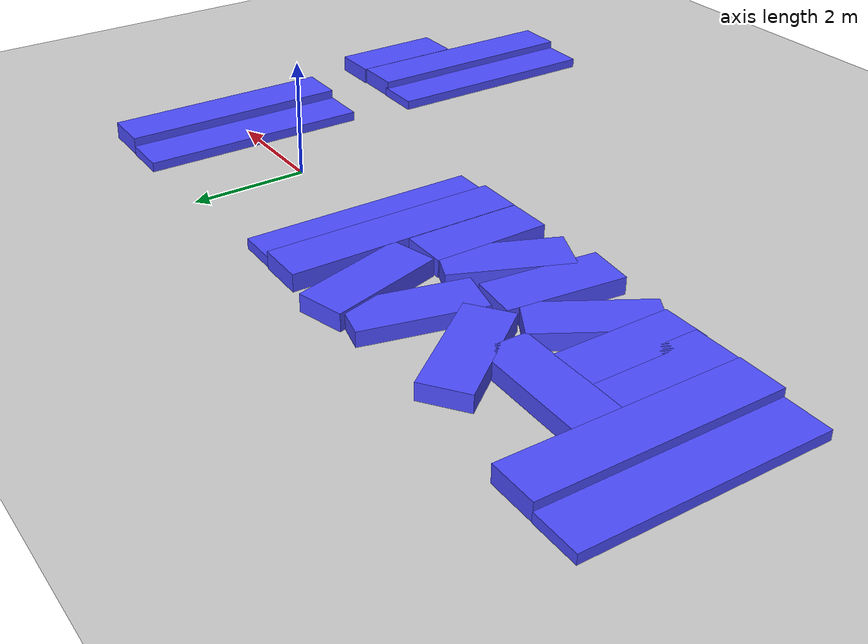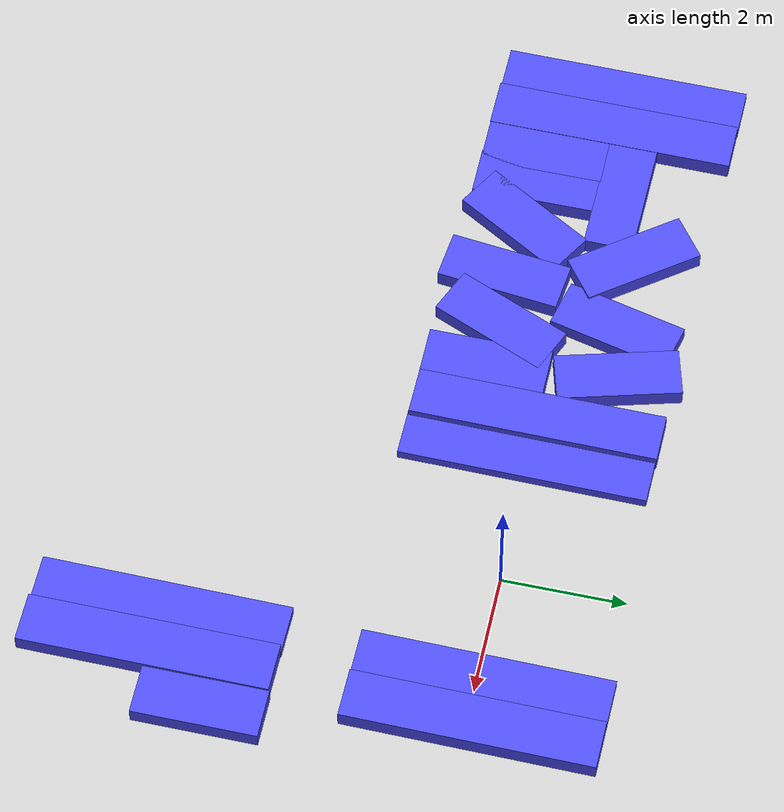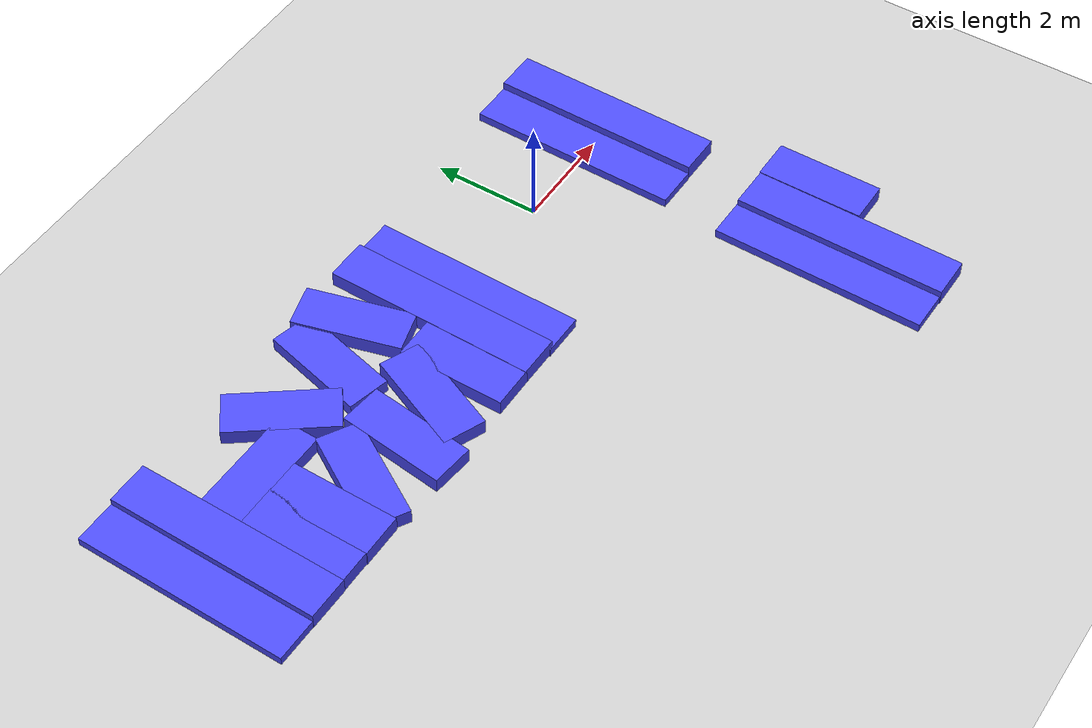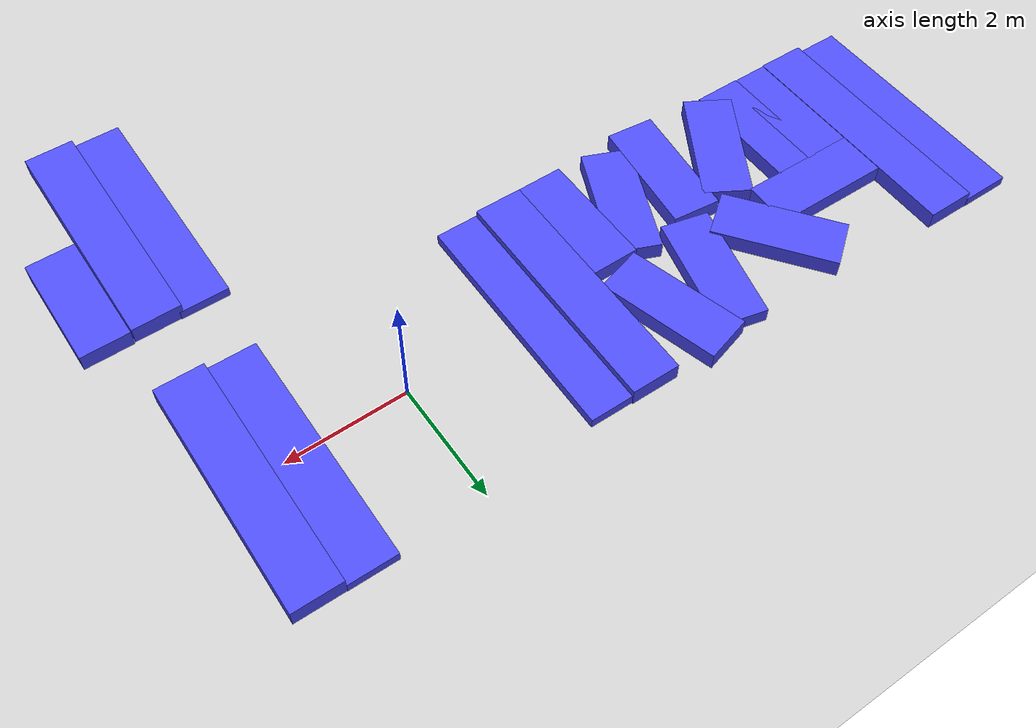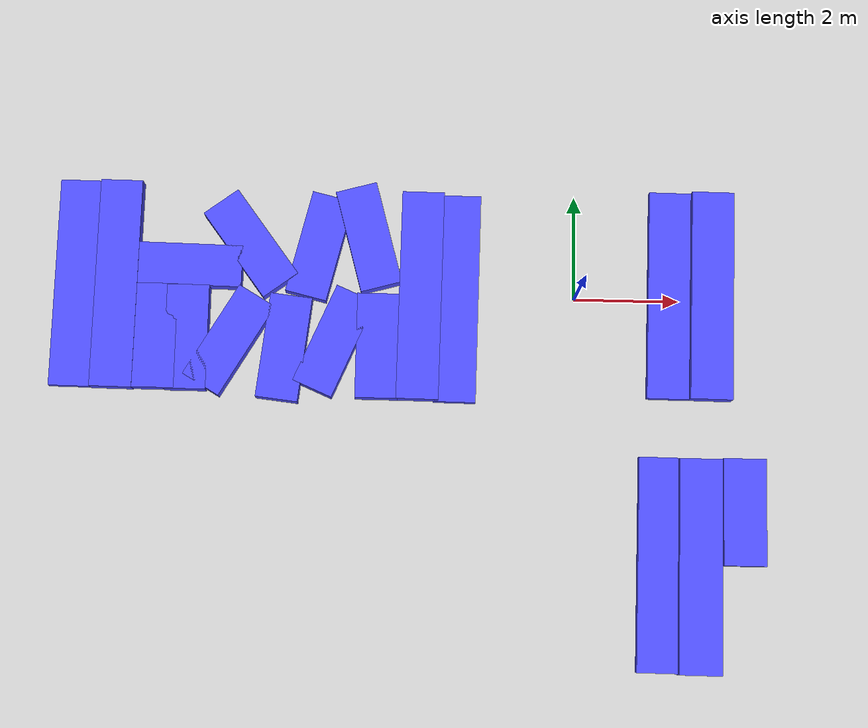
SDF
<sdf version="1.7">
 <world name="default">
  <model name="ground_plane">
   <static>1</static>
   <link name="link">
    <collision name="collision">
     <geometry><plane><normal>0 0 1</normal><size>100 100</size></plane></geometry>
     <surface><friction><ode><mu>100</mu><mu2>50</mu2></ode></friction></surface>
    </collision>
    <visual name="visual">
     <cast_shadows>0</cast_shadows>
     <geometry><plane><normal>0 0 1</normal><size>100 100</size></plane></geometry>
     <material>
      <script><uri>file://media/materials/scripts/gazebo.material</uri><name>Gazebo/Grey</name></script>
     </material>
    </visual>
   </link>
  </model>
  <model name="ban_400_80_30">
   <link name="link">
    <inertial>
     <mass>1</mass>
     <inertia>
      <ixx>0.166667</ixx>
      <ixy>0</ixy>
      <ixz>0</ixz>
      <iyy>0.166667</iyy>
      <iyz>0</iyz>
      <izz>0.166667</izz>
     </inertia>
    </inertial>
    <visual name="visual">
     <geometry><box><size>4 0.8 0.3</size></box></geometry>
     <material>
      <script><name>Gazebo/Grey</name><uri>file://media/materials/scripts/gazebo.material</uri></script>
      <shader type="pixel"><normal_map>__default__</normal_map></shader>
      <ambient>0.3 0.3 1 1</ambient>
      <diffuse>0.7 0.7 0.7 1</diffuse>
      <specular>0.01 0.01 0.01 1</specular>
      <emissive>0 0 0 1</emissive>
     </material>
    </visual>
    <collision name="collision">
     <geometry><box><size>4 0.8 0.3</size></box></geometry>
     <surface>
      <friction>
       <ode><mu>1</mu><mu2>1</mu2><fdir1>0 0 0</fdir1><slip1>0</slip1><slip2>0</slip2></ode>
       <torsional>
        <coefficient>1</coefficient>
        <patch_radius>0</patch_radius>
        <surface_radius>0</surface_radius>
        <use_patch_radius>1</use_patch_radius>
        <ode><slip>0</slip></ode>
       </torsional>
      </friction>
      <bounce><restitution_coefficient>0</restitution_coefficient><threshold>1e+06</threshold></bounce>
      <contact>
       <collide_without_contact>0</collide_without_contact>
       <collide_without_contact_bitmask>1</collide_without_contact_bitmask>
       <collide_bitmask>1</collide_bitmask>
       <ode>
        <soft_cfm>0</soft_cfm>
        <soft_erp>0.2</soft_erp>
        <kp>1e+13</kp>
        <kd>1</kd>
        <max_vel>0.01</max_vel>
        <min_depth>0</min_depth>
       </ode>
       <bullet>
        <split_impulse>1</split_impulse>
        <split_impulse_penetration_threshold>-0.01</split_impulse_penetration_threshold>
        <soft_cfm>0</soft_cfm>
        <soft_erp>0.2</soft_erp>
        <kp>1e+13</kp>
        <kd>1</kd>
       </bullet>
      </contact>
     </surface>
    </collision>
   </link>
   <static>1</static>
   <pose>1.81049 0.102489 0 0 -0 1.55763</pose>
  </model>
  <model name="ban_400_80_30_clone">
   <link name="link">
    <inertial>
     <mass>1</mass>
     <inertia>
      <ixx>0.166667</ixx>
      <ixy>0</ixy>
      <ixz>0</ixz>
      <iyy>0.166667</iyy>
      <iyz>0</iyz>
      <izz>0.166667</izz>
     </inertia>
    </inertial>
    <visual name="visual">
     <geometry><box><size>4 0.8 0.3</size></box></geometry>
     <material>
      <script><name>Gazebo/Grey</name><uri>file://media/materials/scripts/gazebo.material</uri></script>
      <shader type="pixel"><normal_map>__default__</normal_map></shader>
      <ambient>0.3 0.3 1 1</ambient>
      <diffuse>0.7 0.7 0.7 1</diffuse>
      <specular>0.01 0.01 0.01 1</specular>
      <emissive>0 0 0 1</emissive>
     </material>
    </visual>
    <collision name="collision">
     <geometry><box><size>4 0.8 0.3</size></box></geometry>
     <surface>
      <friction>
       <ode><mu>1</mu><mu2>1</mu2><fdir1>0 0 0</fdir1><slip1>0</slip1><slip2>0</slip2></ode>
       <torsional>
        <coefficient>1</coefficient>
        <patch_radius>0</patch_radius>
        <surface_radius>0</surface_radius>
        <use_patch_radius>1</use_patch_radius>
        <ode><slip>0</slip></ode>
       </torsional>
      </friction>
      <bounce><restitution_coefficient>0</restitution_coefficient><threshold>1e+06</threshold></bounce>
      <contact>
       <collide_without_contact>0</collide_without_contact>
       <collide_without_contact_bitmask>1</collide_without_contact_bitmask>
       <collide_bitmask>1</collide_bitmask>
       <ode>
        <soft_cfm>0</soft_cfm>
        <soft_erp>0.2</soft_erp>
        <kp>1e+13</kp>
        <kd>1</kd>
        <max_vel>0.01</max_vel>
        <min_depth>0</min_depth>
       </ode>
       <bullet>
        <split_impulse>1</split_impulse>
        <split_impulse_penetration_threshold>-0.01</split_impulse_penetration_threshold>
        <soft_cfm>0</soft_cfm>
        <soft_erp>0.2</soft_erp>
        <kp>1e+13</kp>
        <kd>1</kd>
       </bullet>
      </contact>
     </surface>
    </collision>
   </link>
   <static>1</static>
   <pose>2.60692 0.093561 0.150704 0 -0 1.55763</pose>
  </model>
  <model name="ban_400_80_30_clone_1">
   <link name="link">
    <inertial>
     <mass>1</mass>
     <inertia>
      <ixx>0.166667</ixx>
      <ixy>0</ixy>
      <ixz>0</ixz>
      <iyy>0.166667</iyy>
      <iyz>0</iyz>
      <izz>0.166667</izz>
     </inertia>
    </inertial>
    <visual name="visual">
     <geometry><box><size>4 0.8 0.3</size></box></geometry>
     <material>
      <script><name>Gazebo/Grey</name><uri>file://media/materials/scripts/gazebo.material</uri></script>
      <shader type="pixel"><normal_map>__default__</normal_map></shader>
      <ambient>0.3 0.3 1 1</ambient>
      <diffuse>0.7 0.7 0.7 1</diffuse>
      <specular>0.01 0.01 0.01 1</specular>
      <emissive>0 0 0 1</emissive>
     </material>
    </visual>
    <collision name="collision">
     <geometry><box><size>4 0.8 0.3</size></box></geometry>
     <surface>
      <friction>
       <ode><mu>1</mu><mu2>1</mu2><fdir1>0 0 0</fdir1><slip1>0</slip1><slip2>0</slip2></ode>
       <torsional>
        <coefficient>1</coefficient>
        <patch_radius>0</patch_radius>
        <surface_radius>0</surface_radius>
        <use_patch_radius>1</use_patch_radius>
        <ode><slip>0</slip></ode>
       </torsional>
      </friction>
      <bounce><restitution_coefficient>0</restitution_coefficient><threshold>1e+06</threshold></bounce>
      <contact>
       <collide_without_contact>0</collide_without_contact>
       <collide_without_contact_bitmask>1</collide_without_contact_bitmask>
       <collide_bitmask>1</collide_bitmask>
       <ode>
        <soft_cfm>0</soft_cfm>
        <soft_erp>0.2</soft_erp>
        <kp>1e+13</kp>
        <kd>1</kd>
        <max_vel>0.01</max_vel>
        <min_depth>0</min_depth>
       </ode>
       <bullet>
        <split_impulse>1</split_impulse>
        <split_impulse_penetration_threshold>-0.01</split_impulse_penetration_threshold>
        <soft_cfm>0</soft_cfm>
        <soft_erp>0.2</soft_erp>
        <kp>1e+13</kp>
        <kd>1</kd>
       </bullet>
      </contact>
     </surface>
    </collision>
   </link>
   <static>1</static>
   <pose>1.61045 -5.009 0 0 -0 1.55763</pose>
  </model>
  <model name="ban_400_80_30_clone_2">
   <link name="link">
    <inertial>
     <mass>1</mass>
     <inertia>
      <ixx>0.166667</ixx>
      <ixy>0</ixy>
      <ixz>0</ixz>
      <iyy>0.166667</iyy>
      <iyz>0</iyz>
      <izz>0.166667</izz>
     </inertia>
    </inertial>
    <visual name="visual">
     <geometry><box><size>4 0.8 0.3</size></box></geometry>
     <material>
      <script><name>Gazebo/Grey</name><uri>file://media/materials/scripts/gazebo.material</uri></script>
      <shader type="pixel"><normal_map>__default__</normal_map></shader>
      <ambient>0.3 0.3 1 1</ambient>
      <diffuse>0.7 0.7 0.7 1</diffuse>
      <specular>0.01 0.01 0.01 1</specular>
      <emissive>0 0 0 1</emissive>
     </material>
    </visual>
    <collision name="collision">
     <geometry><box><size>4 0.8 0.3</size></box></geometry>
     <surface>
      <friction>
       <ode><mu>1</mu><mu2>1</mu2><fdir1>0 0 0</fdir1><slip1>0</slip1><slip2>0</slip2></ode>
       <torsional>
        <coefficient>1</coefficient>
        <patch_radius>0</patch_radius>
        <surface_radius>0</surface_radius>
        <use_patch_radius>1</use_patch_radius>
        <ode><slip>0</slip></ode>
       </torsional>
      </friction>
      <bounce><restitution_coefficient>0</restitution_coefficient><threshold>1e+06</threshold></bounce>
      <contact>
       <collide_without_contact>0</collide_without_contact>
       <collide_without_contact_bitmask>1</collide_without_contact_bitmask>
       <collide_bitmask>1</collide_bitmask>
       <ode>
        <soft_cfm>0</soft_cfm>
        <soft_erp>0.2</soft_erp>
        <kp>1e+13</kp>
        <kd>1</kd>
        <max_vel>0.01</max_vel>
        <min_depth>0</min_depth>
       </ode>
       <bullet>
        <split_impulse>1</split_impulse>
        <split_impulse_penetration_threshold>-0.01</split_impulse_penetration_threshold>
        <soft_cfm>0</soft_cfm>
        <soft_erp>0.2</soft_erp>
        <kp>1e+13</kp>
        <kd>1</kd>
       </bullet>
      </contact>
     </surface>
    </collision>
   </link>
   <static>1</static>
   <pose>2.36163 -5.0304 0.12761 0 -0 1.56189</pose>
  </model>
  <model name="ban_200_80_30">
   <link name="link">
    <inertial>
     <mass>1</mass>
     <inertia>
      <ixx>0.166667</ixx>
      <ixy>0</ixy>
      <ixz>0</ixz>
      <iyy>0.166667</iyy>
      <iyz>0</iyz>
      <izz>0.166667</izz>
     </inertia>
    </inertial>
    <visual name="visual">
     <geometry><box><size>2 0.8 0.3</size></box></geometry>
     <material>
      <script><name>Gazebo/Grey</name><uri>file://media/materials/scripts/gazebo.material</uri></script>
      <shader type="pixel"><normal_map>__default__</normal_map></shader>
      <ambient>0.3 0.3 1 1</ambient>
      <diffuse>0.7 0.7 0.7 1</diffuse>
      <specular>0.01 0.01 0.01 1</specular>
      <emissive>0 0 0 1</emissive>
     </material>
    </visual>
    <collision name="collision">
     <geometry><box><size>2 0.8 0.3</size></box></geometry>
     <surface>
      <friction>
       <ode><mu>1</mu><mu2>1</mu2><fdir1>0 0 0</fdir1><slip1>0</slip1><slip2>0</slip2></ode>
       <torsional>
        <coefficient>1</coefficient>
        <patch_radius>0</patch_radius>
        <surface_radius>0</surface_radius>
        <use_patch_radius>1</use_patch_radius>
        <ode><slip>0</slip></ode>
       </torsional>
      </friction>
      <bounce><restitution_coefficient>0</restitution_coefficient><threshold>1e+06</threshold></bounce>
      <contact>
       <collide_without_contact>0</collide_without_contact>
       <collide_without_contact_bitmask>1</collide_without_contact_bitmask>
       <collide_bitmask>1</collide_bitmask>
       <ode>
        <soft_cfm>0</soft_cfm>
        <soft_erp>0.2</soft_erp>
        <kp>1e+13</kp>
        <kd>1</kd>
        <max_vel>0.01</max_vel>
        <min_depth>0</min_depth>
       </ode>
       <bullet>
        <split_impulse>1</split_impulse>
        <split_impulse_penetration_threshold>-0.01</split_impulse_penetration_threshold>
        <soft_cfm>0</soft_cfm>
        <soft_erp>0.2</soft_erp>
        <kp>1e+13</kp>
        <kd>1</kd>
       </bullet>
      </contact>
     </surface>
    </collision>
   </link>
   <static>1</static>
   <pose>3.19073 -4.01387 0.12138 0 0 -1.57453</pose>
  </model>
  <model name="ban_400_80_30_clone_1_clone_0">
   <link name="link">
    <inertial>
     <mass>1</mass>
     <inertia>
      <ixx>0.166667</ixx>
      <ixy>0</ixy>
      <ixz>0</ixz>
      <iyy>0.166667</iyy>
      <iyz>0</iyz>
      <izz>0.166667</izz>
     </inertia>
    </inertial>
    <visual name="visual">
     <geometry><box><size>4 0.8 0.3</size></box></geometry>
     <material>
      <script><name>Gazebo/Grey</name><uri>file://media/materials/scripts/gazebo.material</uri></script>
      <shader type="pixel"><normal_map>__default__</normal_map></shader>
      <ambient>0.3 0.3 1 1</ambient>
      <diffuse>0.7 0.7 0.7 1</diffuse>
      <specular>0.01 0.01 0.01 1</specular>
      <emissive>0 0 0 1</emissive>
     </material>
    </visual>
    <collision name="collision">
     <geometry><box><size>4 0.8 0.3</size></box></geometry>
     <surface>
      <friction>
       <ode><mu>1</mu><mu2>1</mu2><fdir1>0 0 0</fdir1><slip1>0</slip1><slip2>0</slip2></ode>
       <torsional>
        <coefficient>1</coefficient>
        <patch_radius>0</patch_radius>
        <surface_radius>0</surface_radius>
        <use_patch_radius>1</use_patch_radius>
        <ode><slip>0</slip></ode>
       </torsional>
      </friction>
      <bounce><restitution_coefficient>0</restitution_coefficient><threshold>1e+06</threshold></bounce>
      <contact>
       <collide_without_contact>0</collide_without_contact>
       <collide_without_contact_bitmask>1</collide_without_contact_bitmask>
       <collide_bitmask>1</collide_bitmask>
       <ode>
        <soft_cfm>0</soft_cfm>
        <soft_erp>0.2</soft_erp>
        <kp>1e+13</kp>
        <kd>1</kd>
        <max_vel>0.01</max_vel>
        <min_depth>0</min_depth>
       </ode>
       <bullet>
        <split_impulse>1</split_impulse>
        <split_impulse_penetration_threshold>-0.01</split_impulse_penetration_threshold>
        <soft_cfm>0</soft_cfm>
        <soft_erp>0.2</soft_erp>
        <kp>1e+13</kp>
        <kd>1</kd>
       </bullet>
      </contact>
     </surface>
    </collision>
   </link>
   <static>1</static>
   <pose>-2.22814 -0.040001 0.008853 0 -0 1.55763</pose>
  </model>
  <model name="ban_400_80_30_clone_1_clone_1">
   <link name="link">
    <inertial>
     <mass>1</mass>
     <inertia>
      <ixx>0.166667</ixx>
      <ixy>0</ixy>
      <ixz>0</ixz>
      <iyy>0.166667</iyy>
      <iyz>0</iyz>
      <izz>0.166667</izz>
     </inertia>
    </inertial>
    <visual name="visual">
     <geometry><box><size>4 0.8 0.3</size></box></geometry>
     <material>
      <script><name>Gazebo/Grey</name><uri>file://media/materials/scripts/gazebo.material</uri></script>
      <shader type="pixel"><normal_map>__default__</normal_map></shader>
      <ambient>0.3 0.3 1 1</ambient>
      <diffuse>0.7 0.7 0.7 1</diffuse>
      <specular>0.01 0.01 0.01 1</specular>
      <emissive>0 0 0 1</emissive>
     </material>
    </visual>
    <collision name="collision">
     <geometry><box><size>4 0.8 0.3</size></box></geometry>
     <surface>
      <friction>
       <ode><mu>1</mu><mu2>1</mu2><fdir1>0 0 0</fdir1><slip1>0</slip1><slip2>0</slip2></ode>
       <torsional>
        <coefficient>1</coefficient>
        <patch_radius>0</patch_radius>
        <surface_radius>0</surface_radius>
        <use_patch_radius>1</use_patch_radius>
        <ode><slip>0</slip></ode>
       </torsional>
      </friction>
      <bounce><restitution_coefficient>0</restitution_coefficient><threshold>1e+06</threshold></bounce>
      <contact>
       <collide_without_contact>0</collide_without_contact>
       <collide_without_contact_bitmask>1</collide_without_contact_bitmask>
       <collide_bitmask>1</collide_bitmask>
       <ode>
        <soft_cfm>0</soft_cfm>
        <soft_erp>0.2</soft_erp>
        <kp>1e+13</kp>
        <kd>1</kd>
        <max_vel>0.01</max_vel>
        <min_depth>0</min_depth>
       </ode>
       <bullet>
        <split_impulse>1</split_impulse>
        <split_impulse_penetration_threshold>-0.01</split_impulse_penetration_threshold>
        <soft_cfm>0</soft_cfm>
        <soft_erp>0.2</soft_erp>
        <kp>1e+13</kp>
        <kd>1</kd>
       </bullet>
      </contact>
     </surface>
    </collision>
   </link>
   <static>1</static>
   <pose>-2.93518 -0.012385 0.133573 0 -0 1.55763</pose>
  </model>
  <model name="ban_200_80_30_clone_8">
   <link name="link">
    <inertial>
     <mass>1</mass>
     <inertia>
      <ixx>0.166667</ixx>
      <ixy>0</ixy>
      <ixz>0</ixz>
      <iyy>0.166667</iyy>
      <iyz>0</iyz>
      <izz>0.166667</izz>
     </inertia>
    </inertial>
    <visual name="visual">
     <geometry><box><size>2 0.8 0.3</size></box></geometry>
     <material>
      <script><name>Gazebo/Grey</name><uri>file://media/materials/scripts/gazebo.material</uri></script>
      <shader type="pixel"><normal_map>__default__</normal_map></shader>
      <ambient>0.3 0.3 1 1</ambient>
      <diffuse>0.7 0.7 0.7 1</diffuse>
      <specular>0.01 0.01 0.01 1</specular>
      <emissive>0 0 0 1</emissive>
     </material>
    </visual>
    <collision name="collision">
     <geometry><box><size>2 0.8 0.3</size></box></geometry>
     <surface>
      <friction>
       <ode><mu>1</mu><mu2>1</mu2><fdir1>0 0 0</fdir1><slip1>0</slip1><slip2>0</slip2></ode>
       <torsional>
        <coefficient>1</coefficient>
        <patch_radius>0</patch_radius>
        <surface_radius>0</surface_radius>
        <use_patch_radius>1</use_patch_radius>
        <ode><slip>0</slip></ode>
       </torsional>
      </friction>
      <bounce><restitution_coefficient>0</restitution_coefficient><threshold>1e+06</threshold></bounce>
      <contact>
       <collide_without_contact>0</collide_without_contact>
       <collide_without_contact_bitmask>1</collide_without_contact_bitmask>
       <collide_bitmask>1</collide_bitmask>
       <ode>
        <soft_cfm>0</soft_cfm>
        <soft_erp>0.2</soft_erp>
        <kp>1e+13</kp>
        <kd>1</kd>
        <max_vel>0.01</max_vel>
        <min_depth>0</min_depth>
       </ode>
       <bullet>
        <split_impulse>1</split_impulse>
        <split_impulse_penetration_threshold>-0.01</split_impulse_penetration_threshold>
        <soft_cfm>0</soft_cfm>
        <soft_erp>0.2</soft_erp>
        <kp>1e+13</kp>
        <kd>1</kd>
       </bullet>
      </contact>
     </surface>
    </collision>
   </link>
   <static>1</static>
   <pose>-3.72934 -1.00765 0.127404 0 0 -1.57453</pose>
  </model>
  <model name="ban_200_80_30_clone_clone_clone">
   <link name="link">
    <inertial>
     <mass>1</mass>
     <inertia>
      <ixx>0.166667</ixx>
      <ixy>0</ixy>
      <ixz>0</ixz>
      <iyy>0.166667</iyy>
      <iyz>0</iyz>
      <izz>0.166667</izz>
     </inertia>
    </inertial>
    <visual name="visual">
     <geometry><box><size>2 0.8 0.3</size></box></geometry>
     <material>
      <script><name>Gazebo/Grey</name><uri>file://media/materials/scripts/gazebo.material</uri></script>
      <shader type="pixel"><normal_map>__default__</normal_map></shader>
      <ambient>0.3 0.3 1 1</ambient>
      <diffuse>0.7 0.7 0.7 1</diffuse>
      <specular>0.01 0.01 0.01 1</specular>
      <emissive>0 0 0 1</emissive>
     </material>
    </visual>
    <collision name="collision">
     <geometry><box><size>2 0.8 0.3</size></box></geometry>
     <surface>
      <friction>
       <ode><mu>1</mu><mu2>1</mu2><fdir1>0 0 0</fdir1><slip1>0</slip1><slip2>0</slip2></ode>
       <torsional>
        <coefficient>1</coefficient>
        <patch_radius>0</patch_radius>
        <surface_radius>0</surface_radius>
        <use_patch_radius>1</use_patch_radius>
        <ode><slip>0</slip></ode>
       </torsional>
      </friction>
      <bounce><restitution_coefficient>0</restitution_coefficient><threshold>1e+06</threshold></bounce>
      <contact>
       <collide_without_contact>0</collide_without_contact>
       <collide_without_contact_bitmask>1</collide_without_contact_bitmask>
       <collide_bitmask>1</collide_bitmask>
       <ode>
        <soft_cfm>0</soft_cfm>
        <soft_erp>0.2</soft_erp>
        <kp>1e+13</kp>
        <kd>1</kd>
        <max_vel>0.01</max_vel>
        <min_depth>0</min_depth>
       </ode>
       <bullet>
        <split_impulse>1</split_impulse>
        <split_impulse_penetration_threshold>-0.01</split_impulse_penetration_threshold>
        <soft_cfm>0</soft_cfm>
        <soft_erp>0.2</soft_erp>
        <kp>1e+13</kp>
        <kd>1</kd>
       </bullet>
      </contact>
     </surface>
    </collision>
   </link>
   <static>1</static>
   <pose>-3.93538 1.08965 0.132586 0 0 -1.30462</pose>
  </model>
  <model name="ban_200_80_30_clone_8_clone">
   <link name="link">
    <inertial>
     <mass>1</mass>
     <inertia>
      <ixx>0.166667</ixx>
      <ixy>0</ixy>
      <ixz>0</ixz>
      <iyy>0.166667</iyy>
      <iyz>0</iyz>
      <izz>0.166667</izz>
     </inertia>
    </inertial>
    <visual name="visual">
     <geometry><box><size>2 0.8 0.3</size></box></geometry>
     <material>
      <script><name>Gazebo/Grey</name><uri>file://media/materials/scripts/gazebo.material</uri></script>
      <shader type="pixel"><normal_map>__default__</normal_map></shader>
      <ambient>0.3 0.3 1 1</ambient>
      <diffuse>0.7 0.7 0.7 1</diffuse>
      <specular>0.01 0.01 0.01 1</specular>
      <emissive>0 0 0 1</emissive>
     </material>
    </visual>
    <collision name="collision">
     <geometry><box><size>2 0.8 0.3</size></box></geometry>
     <surface>
      <friction>
       <ode><mu>1</mu><mu2>1</mu2><fdir1>0 0 0</fdir1><slip1>0</slip1><slip2>0</slip2></ode>
       <torsional>
        <coefficient>1</coefficient>
        <patch_radius>0</patch_radius>
        <surface_radius>0</surface_radius>
        <use_patch_radius>1</use_patch_radius>
        <ode><slip>0</slip></ode>
       </torsional>
      </friction>
      <bounce><restitution_coefficient>0</restitution_coefficient><threshold>1e+06</threshold></bounce>
      <contact>
       <collide_without_contact>0</collide_without_contact>
       <collide_without_contact_bitmask>1</collide_without_contact_bitmask>
       <collide_bitmask>1</collide_bitmask>
       <ode>
        <soft_cfm>0</soft_cfm>
        <soft_erp>0.2</soft_erp>
        <kp>1e+13</kp>
        <kd>1</kd>
        <max_vel>0.01</max_vel>
        <min_depth>0</min_depth>
       </ode>
       <bullet>
        <split_impulse>1</split_impulse>
        <split_impulse_penetration_threshold>-0.01</split_impulse_penetration_threshold>
        <soft_cfm>0</soft_cfm>
        <soft_erp>0.2</soft_erp>
        <kp>1e+13</kp>
        <kd>1</kd>
       </bullet>
      </contact>
     </surface>
    </collision>
   </link>
   <static>1</static>
   <pose>-4.54627 -0.935401 0.127404 0 0 -1.97874</pose>
  </model>
  <model name="ban_200_80_30_clone_8_clone_0">
   <link name="link">
    <inertial>
     <mass>1</mass>
     <inertia>
      <ixx>0.166667</ixx>
      <ixy>0</ixy>
      <ixz>0</ixz>
      <iyy>0.166667</iyy>
      <iyz>0</iyz>
      <izz>0.166667</izz>
     </inertia>
    </inertial>
    <visual name="visual">
     <geometry><box><size>2 0.8 0.3</size></box></geometry>
     <material>
      <script><name>Gazebo/Grey</name><uri>file://media/materials/scripts/gazebo.material</uri></script>
      <shader type="pixel"><normal_map>__default__</normal_map></shader>
      <ambient>0.3 0.3 1 1</ambient>
      <diffuse>0.7 0.7 0.7 1</diffuse>
      <specular>0.01 0.01 0.01 1</specular>
      <emissive>0 0 0 1</emissive>
     </material>
    </visual>
    <collision name="collision">
     <geometry><box><size>2 0.8 0.3</size></box></geometry>
     <surface>
      <friction>
       <ode><mu>1</mu><mu2>1</mu2><fdir1>0 0 0</fdir1><slip1>0</slip1><slip2>0</slip2></ode>
       <torsional>
        <coefficient>1</coefficient>
        <patch_radius>0</patch_radius>
        <surface_radius>0</surface_radius>
        <use_patch_radius>1</use_patch_radius>
        <ode><slip>0</slip></ode>
       </torsional>
      </friction>
      <bounce><restitution_coefficient>0</restitution_coefficient><threshold>1e+06</threshold></bounce>
      <contact>
       <collide_without_contact>0</collide_without_contact>
       <collide_without_contact_bitmask>1</collide_without_contact_bitmask>
       <collide_bitmask>1</collide_bitmask>
       <ode>
        <soft_cfm>0</soft_cfm>
        <soft_erp>0.2</soft_erp>
        <kp>1e+13</kp>
        <kd>1</kd>
        <max_vel>0.01</max_vel>
        <min_depth>0</min_depth>
       </ode>
       <bullet>
        <split_impulse>1</split_impulse>
        <split_impulse_penetration_threshold>-0.01</split_impulse_penetration_threshold>
        <soft_cfm>0</soft_cfm>
        <soft_erp>0.2</soft_erp>
        <kp>1e+13</kp>
        <kd>1</kd>
       </bullet>
      </contact>
     </surface>
    </collision>
   </link>
   <static>1</static>
   <pose>-4.87518 0.904279 0.090917 0 0 -1.81122</pose>
  </model>
  <model name="ban_200_80_30_clone_8_clone_1">
   <link name="link">
    <inertial>
     <mass>1</mass>
     <inertia>
      <ixx>0.166667</ixx>
      <ixy>0</ixy>
      <ixz>0</ixz>
      <iyy>0.166667</iyy>
      <iyz>0</iyz>
      <izz>0.166667</izz>
     </inertia>
    </inertial>
    <visual name="visual">
     <geometry><box><size>2 0.8 0.3</size></box></geometry>
     <material>
      <script><name>Gazebo/Grey</name><uri>file://media/materials/scripts/gazebo.material</uri></script>
      <shader type="pixel"><normal_map>__default__</normal_map></shader>
      <ambient>0.3 0.3 1 1</ambient>
      <diffuse>0.7 0.7 0.7 1</diffuse>
      <specular>0.01 0.01 0.01 1</specular>
      <emissive>0 0 0 1</emissive>
     </material>
    </visual>
    <collision name="collision">
     <geometry><box><size>2 0.8 0.3</size></box></geometry>
     <surface>
      <friction>
       <ode><mu>1</mu><mu2>1</mu2><fdir1>0 0 0</fdir1><slip1>0</slip1><slip2>0</slip2></ode>
       <torsional>
        <coefficient>1</coefficient>
        <patch_radius>0</patch_radius>
        <surface_radius>0</surface_radius>
        <use_patch_radius>1</use_patch_radius>
        <ode><slip>0</slip></ode>
       </torsional>
      </friction>
      <bounce><restitution_coefficient>0</restitution_coefficient><threshold>1e+06</threshold></bounce>
      <contact>
       <collide_without_contact>0</collide_without_contact>
       <collide_without_contact_bitmask>1</collide_without_contact_bitmask>
       <collide_bitmask>1</collide_bitmask>
       <ode>
        <soft_cfm>0</soft_cfm>
        <soft_erp>0.2</soft_erp>
        <kp>1e+13</kp>
        <kd>1</kd>
        <max_vel>0.01</max_vel>
        <min_depth>0</min_depth>
       </ode>
       <bullet>
        <split_impulse>1</split_impulse>
        <split_impulse_penetration_threshold>-0.01</split_impulse_penetration_threshold>
        <soft_cfm>0</soft_cfm>
        <soft_erp>0.2</soft_erp>
        <kp>1e+13</kp>
        <kd>1</kd>
       </bullet>
      </contact>
     </surface>
    </collision>
   </link>
   <static>1</static>
   <pose>-6.18402 0.922371 0.127404 0 0 -0.933392</pose>
  </model>
  <model name="ban_200_80_30_clone_8_clone_2">
   <link name="link">
    <inertial>
     <mass>1</mass>
     <inertia>
      <ixx>0.166667</ixx>
      <ixy>0</ixy>
      <ixz>0</ixz>
      <iyy>0.166667</iyy>
      <iyz>0</iyz>
      <izz>0.166667</izz>
     </inertia>
    </inertial>
    <visual name="visual">
     <geometry><box><size>2 0.8 0.3</size></box></geometry>
     <material>
      <script><name>Gazebo/Grey</name><uri>file://media/materials/scripts/gazebo.material</uri></script>
      <shader type="pixel"><normal_map>__default__</normal_map></shader>
      <ambient>0.3 0.3 1 1</ambient>
      <diffuse>0.7 0.7 0.7 1</diffuse>
      <specular>0.01 0.01 0.01 1</specular>
      <emissive>0 0 0 1</emissive>
     </material>
    </visual>
    <collision name="collision">
     <geometry><box><size>2 0.8 0.3</size></box></geometry>
     <surface>
      <friction>
       <ode><mu>1</mu><mu2>1</mu2><fdir1>0 0 0</fdir1><slip1>0</slip1><slip2>0</slip2></ode>
       <torsional>
        <coefficient>1</coefficient>
        <patch_radius>0</patch_radius>
        <surface_radius>0</surface_radius>
        <use_patch_radius>1</use_patch_radius>
        <ode><slip>0</slip></ode>
       </torsional>
      </friction>
      <bounce><restitution_coefficient>0</restitution_coefficient><threshold>1e+06</threshold></bounce>
      <contact>
       <collide_without_contact>0</collide_without_contact>
       <collide_without_contact_bitmask>1</collide_without_contact_bitmask>
       <collide_bitmask>1</collide_bitmask>
       <ode>
        <soft_cfm>0</soft_cfm>
        <soft_erp>0.2</soft_erp>
        <kp>1e+13</kp>
        <kd>1</kd>
        <max_vel>0.01</max_vel>
        <min_depth>0</min_depth>
       </ode>
       <bullet>
        <split_impulse>1</split_impulse>
        <split_impulse_penetration_threshold>-0.01</split_impulse_penetration_threshold>
        <soft_cfm>0</soft_cfm>
        <soft_erp>0.2</soft_erp>
        <kp>1e+13</kp>
        <kd>1</kd>
       </bullet>
      </contact>
     </surface>
    </collision>
   </link>
   <static>1</static>
   <pose>-5.49288 -1.0742 0.127404 0 0 -1.68677</pose>
  </model>
  <model name="ban_200_80_30_clone_8_clone_3">
   <link name="link">
    <inertial>
     <mass>1</mass>
     <inertia>
      <ixx>0.166667</ixx>
      <ixy>0</ixy>
      <ixz>0</ixz>
      <iyy>0.166667</iyy>
      <iyz>0</iyz>
      <izz>0.166667</izz>
     </inertia>
    </inertial>
    <visual name="visual">
     <geometry><box><size>2 0.8 0.3</size></box></geometry>
     <material>
      <script><name>Gazebo/Grey</name><uri>file://media/materials/scripts/gazebo.material</uri></script>
      <shader type="pixel"><normal_map>__default__</normal_map></shader>
      <ambient>0.3 0.3 1 1</ambient>
      <diffuse>0.7 0.7 0.7 1</diffuse>
      <specular>0.01 0.01 0.01 1</specular>
      <emissive>0 0 0 1</emissive>
     </material>
    </visual>
    <collision name="collision">
     <geometry><box><size>2 0.8 0.3</size></box></geometry>
     <surface>
      <friction>
       <ode><mu>1</mu><mu2>1</mu2><fdir1>0 0 0</fdir1><slip1>0</slip1><slip2>0</slip2></ode>
       <torsional>
        <coefficient>1</coefficient>
        <patch_radius>0</patch_radius>
        <surface_radius>0</surface_radius>
        <use_patch_radius>1</use_patch_radius>
        <ode><slip>0</slip></ode>
       </torsional>
      </friction>
      <bounce><restitution_coefficient>0</restitution_coefficient><threshold>1e+06</threshold></bounce>
      <contact>
       <collide_without_contact>0</collide_without_contact>
       <collide_without_contact_bitmask>1</collide_without_contact_bitmask>
       <collide_bitmask>1</collide_bitmask>
       <ode>
        <soft_cfm>0</soft_cfm>
        <soft_erp>0.2</soft_erp>
        <kp>1e+13</kp>
        <kd>1</kd>
        <max_vel>0.01</max_vel>
        <min_depth>0</min_depth>
       </ode>
       <bullet>
        <split_impulse>1</split_impulse>
        <split_impulse_penetration_threshold>-0.01</split_impulse_penetration_threshold>
        <soft_cfm>0</soft_cfm>
        <soft_erp>0.2</soft_erp>
        <kp>1e+13</kp>
        <kd>1</kd>
       </bullet>
      </contact>
     </surface>
    </collision>
   </link>
   <static>1</static>
   <pose>-6.53475 -0.956936 0.127404 0 0 -2.10741</pose>
  </model>
  <model name="ban_200_80_30_clone_8_clone_clone">
   <link name="link">
    <inertial>
     <mass>1</mass>
     <inertia>
      <ixx>0.166667</ixx>
      <ixy>0</ixy>
      <ixz>0</ixz>
      <iyy>0.166667</iyy>
      <iyz>0</iyz>
      <izz>0.166667</izz>
     </inertia>
    </inertial>
    <visual name="visual">
     <geometry><box><size>2 0.8 0.3</size></box></geometry>
     <material>
      <script><name>Gazebo/Grey</name><uri>file://media/materials/scripts/gazebo.material</uri></script>
      <shader type="pixel"><normal_map>__default__</normal_map></shader>
      <ambient>0.3 0.3 1 1</ambient>
      <diffuse>0.7 0.7 0.7 1</diffuse>
      <specular>0.01 0.01 0.01 1</specular>
      <emissive>0 0 0 1</emissive>
     </material>
    </visual>
    <collision name="collision">
     <geometry><box><size>2 0.8 0.3</size></box></geometry>
     <surface>
      <friction>
       <ode><mu>1</mu><mu2>1</mu2><fdir1>0 0 0</fdir1><slip1>0</slip1><slip2>0</slip2></ode>
       <torsional>
        <coefficient>1</coefficient>
        <patch_radius>0</patch_radius>
        <surface_radius>0</surface_radius>
        <use_patch_radius>1</use_patch_radius>
        <ode><slip>0</slip></ode>
       </torsional>
      </friction>
      <bounce><restitution_coefficient>0</restitution_coefficient><threshold>1e+06</threshold></bounce>
      <contact>
       <collide_without_contact>0</collide_without_contact>
       <collide_without_contact_bitmask>1</collide_without_contact_bitmask>
       <collide_bitmask>1</collide_bitmask>
       <ode>
        <soft_cfm>0</soft_cfm>
        <soft_erp>0.2</soft_erp>
        <kp>1e+13</kp>
        <kd>1</kd>
        <max_vel>0.01</max_vel>
        <min_depth>0</min_depth>
       </ode>
       <bullet>
        <split_impulse>1</split_impulse>
        <split_impulse_penetration_threshold>-0.01</split_impulse_penetration_threshold>
        <soft_cfm>0</soft_cfm>
        <soft_erp>0.2</soft_erp>
        <kp>1e+13</kp>
        <kd>1</kd>
       </bullet>
      </contact>
     </surface>
    </collision>
   </link>
   <static>1</static>
   <pose>-7.33503 0.486178 0.127404 0 -0 3.12114</pose>
  </model>
  <model name="ban_200_80_30_clone_8_clone_4">
   <link name="link">
    <inertial>
     <mass>1</mass>
     <inertia>
      <ixx>0.166667</ixx>
      <ixy>0</ixy>
      <ixz>0</ixz>
      <iyy>0.166667</iyy>
      <iyz>0</iyz>
      <izz>0.166667</izz>
     </inertia>
    </inertial>
    <visual name="visual">
     <geometry><box><size>2 0.8 0.3</size></box></geometry>
     <material>
      <script><name>Gazebo/Grey</name><uri>file://media/materials/scripts/gazebo.material</uri></script>
      <shader type="pixel"><normal_map>__default__</normal_map></shader>
      <ambient>0.3 0.3 1 1</ambient>
      <diffuse>0.7 0.7 0.7 1</diffuse>
      <specular>0.01 0.01 0.01 1</specular>
      <emissive>0 0 0 1</emissive>
     </material>
    </visual>
    <collision name="collision">
     <geometry><box><size>2 0.8 0.3</size></box></geometry>
     <surface>
      <friction>
       <ode><mu>1</mu><mu2>1</mu2><fdir1>0 0 0</fdir1><slip1>0</slip1><slip2>0</slip2></ode>
       <torsional>
        <coefficient>1</coefficient>
        <patch_radius>0</patch_radius>
        <surface_radius>0</surface_radius>
        <use_patch_radius>1</use_patch_radius>
        <ode><slip>0</slip></ode>
       </torsional>
      </friction>
      <bounce><restitution_coefficient>0</restitution_coefficient><threshold>1e+06</threshold></bounce>
      <contact>
       <collide_without_contact>0</collide_without_contact>
       <collide_without_contact_bitmask>1</collide_without_contact_bitmask>
       <collide_bitmask>1</collide_bitmask>
       <ode>
        <soft_cfm>0</soft_cfm>
        <soft_erp>0.2</soft_erp>
        <kp>1e+13</kp>
        <kd>1</kd>
        <max_vel>0.01</max_vel>
        <min_depth>0</min_depth>
       </ode>
       <bullet>
        <split_impulse>1</split_impulse>
        <split_impulse_penetration_threshold>-0.01</split_impulse_penetration_threshold>
        <soft_cfm>0</soft_cfm>
        <soft_erp>0.2</soft_erp>
        <kp>1e+13</kp>
        <kd>1</kd>
       </bullet>
      </contact>
     </surface>
    </collision>
   </link>
   <static>1</static>
   <pose>-7.34402 -0.905706 0.127404 0 0 -1.57453</pose>
  </model>
  <model name="ban_200_80_30_clone_8_clone_5">
   <link name="link">
    <inertial>
     <mass>1</mass>
     <inertia>
      <ixx>0.166667</ixx>
      <ixy>0</ixy>
      <ixz>0</ixz>
      <iyy>0.166667</iyy>
      <iyz>0</iyz>
      <izz>0.166667</izz>
     </inertia>
    </inertial>
    <visual name="visual">
     <geometry><box><size>2 0.8 0.3</size></box></geometry>
     <material>
      <script><name>Gazebo/Grey</name><uri>file://media/materials/scripts/gazebo.material</uri></script>
      <shader type="pixel"><normal_map>__default__</normal_map></shader>
      <ambient>0.3 0.3 1 1</ambient>
      <diffuse>0.7 0.7 0.7 1</diffuse>
      <specular>0.01 0.01 0.01 1</specular>
      <emissive>0 0 0 1</emissive>
     </material>
    </visual>
    <collision name="collision">
     <geometry><box><size>2 0.8 0.3</size></box></geometry>
     <surface>
      <friction>
       <ode><mu>1</mu><mu2>1</mu2><fdir1>0 0 0</fdir1><slip1>0</slip1><slip2>0</slip2></ode>
       <torsional>
        <coefficient>1</coefficient>
        <patch_radius>0</patch_radius>
        <surface_radius>0</surface_radius>
        <use_patch_radius>1</use_patch_radius>
        <ode><slip>0</slip></ode>
       </torsional>
      </friction>
      <bounce><restitution_coefficient>0</restitution_coefficient><threshold>1e+06</threshold></bounce>
      <contact>
       <collide_without_contact>0</collide_without_contact>
       <collide_without_contact_bitmask>1</collide_without_contact_bitmask>
       <collide_bitmask>1</collide_bitmask>
       <ode>
        <soft_cfm>0</soft_cfm>
        <soft_erp>0.2</soft_erp>
        <kp>1e+13</kp>
        <kd>1</kd>
        <max_vel>0.01</max_vel>
        <min_depth>0</min_depth>
       </ode>
       <bullet>
        <split_impulse>1</split_impulse>
        <split_impulse_penetration_threshold>-0.01</split_impulse_penetration_threshold>
        <soft_cfm>0</soft_cfm>
        <soft_erp>0.2</soft_erp>
        <kp>1e+13</kp>
        <kd>1</kd>
       </bullet>
      </contact>
     </surface>
    </collision>
   </link>
   <static>1</static>
   <pose>-7.94476 -0.891677 0.127404 0 0 -1.57453</pose>
  </model>
  <model name="ban_400_80_30_clone_1_clone_1_clone">
   <link name="link">
    <inertial>
     <mass>1</mass>
     <inertia>
      <ixx>0.166667</ixx>
      <ixy>0</ixy>
      <ixz>0</ixz>
      <iyy>0.166667</iyy>
      <iyz>0</iyz>
      <izz>0.166667</izz>
     </inertia>
    </inertial>
    <visual name="visual">
     <geometry><box><size>4 0.8 0.3</size></box></geometry>
     <material>
      <script><name>Gazebo/Grey</name><uri>file://media/materials/scripts/gazebo.material</uri></script>
      <shader type="pixel"><normal_map>__default__</normal_map></shader>
      <ambient>0.3 0.3 1 1</ambient>
      <diffuse>0.7 0.7 0.7 1</diffuse>
      <specular>0.01 0.01 0.01 1</specular>
      <emissive>0 0 0 1</emissive>
     </material>
    </visual>
    <collision name="collision">
     <geometry><box><size>4 0.8 0.3</size></box></geometry>
     <surface>
      <friction>
       <ode><mu>1</mu><mu2>1</mu2><fdir1>0 0 0</fdir1><slip1>0</slip1><slip2>0</slip2></ode>
       <torsional>
        <coefficient>1</coefficient>
        <patch_radius>0</patch_radius>
        <surface_radius>0</surface_radius>
        <use_patch_radius>1</use_patch_radius>
        <ode><slip>0</slip></ode>
       </torsional>
      </friction>
      <bounce><restitution_coefficient>0</restitution_coefficient><threshold>1e+06</threshold></bounce>
      <contact>
       <collide_without_contact>0</collide_without_contact>
       <collide_without_contact_bitmask>1</collide_without_contact_bitmask>
       <collide_bitmask>1</collide_bitmask>
       <ode>
        <soft_cfm>0</soft_cfm>
        <soft_erp>0.2</soft_erp>
        <kp>1e+13</kp>
        <kd>1</kd>
        <max_vel>0.01</max_vel>
        <min_depth>0</min_depth>
       </ode>
       <bullet>
        <split_impulse>1</split_impulse>
        <split_impulse_penetration_threshold>-0.01</split_impulse_penetration_threshold>
        <soft_cfm>0</soft_cfm>
        <soft_erp>0.2</soft_erp>
        <kp>1e+13</kp>
        <kd>1</kd>
       </bullet>
      </contact>
     </surface>
    </collision>
   </link>
   <static>1</static>
   <pose>-8.71561 0.106545 0.133573 0 -0 1.55763</pose>
  </model>
  <model name="ban_400_80_30_clone_1_clone_1_clone_0">
   <link name="link">
    <inertial>
     <mass>1</mass>
     <inertia>
      <ixx>0.166667</ixx>
      <ixy>0</ixy>
      <ixz>0</ixz>
      <iyy>0.166667</iyy>
      <iyz>0</iyz>
      <izz>0.166667</izz>
     </inertia>
    </inertial>
    <visual name="visual">
     <geometry><box><size>4 0.8 0.3</size></box></geometry>
     <material>
      <script><name>Gazebo/Grey</name><uri>file://media/materials/scripts/gazebo.material</uri></script>
      <shader type="pixel"><normal_map>__default__</normal_map></shader>
      <ambient>0.3 0.3 1 1</ambient>
      <diffuse>0.7 0.7 0.7 1</diffuse>
      <specular>0.01 0.01 0.01 1</specular>
      <emissive>0 0 0 1</emissive>
     </material>
    </visual>
    <collision name="collision">
     <geometry><box><size>4 0.8 0.3</size></box></geometry>
     <surface>
      <friction>
       <ode><mu>1</mu><mu2>1</mu2><fdir1>0 0 0</fdir1><slip1>0</slip1><slip2>0</slip2></ode>
       <torsional>
        <coefficient>1</coefficient>
        <patch_radius>0</patch_radius>
        <surface_radius>0</surface_radius>
        <use_patch_radius>1</use_patch_radius>
        <ode><slip>0</slip></ode>
       </torsional>
      </friction>
      <bounce><restitution_coefficient>0</restitution_coefficient><threshold>1e+06</threshold></bounce>
      <contact>
       <collide_without_contact>0</collide_without_contact>
       <collide_without_contact_bitmask>1</collide_without_contact_bitmask>
       <collide_bitmask>1</collide_bitmask>
       <ode>
        <soft_cfm>0</soft_cfm>
        <soft_erp>0.2</soft_erp>
        <kp>1e+13</kp>
        <kd>1</kd>
        <max_vel>0.01</max_vel>
        <min_depth>0</min_depth>
       </ode>
       <bullet>
        <split_impulse>1</split_impulse>
        <split_impulse_penetration_threshold>-0.01</split_impulse_penetration_threshold>
        <soft_cfm>0</soft_cfm>
        <soft_erp>0.2</soft_erp>
        <kp>1e+13</kp>
        <kd>1</kd>
       </bullet>
      </contact>
     </surface>
    </collision>
   </link>
   <static>1</static>
   <pose>-9.51193 0.123849 -0.002327 0 -0 1.55763</pose>
  </model>
 </world>
</sdf>
